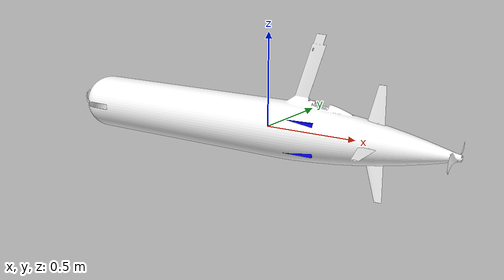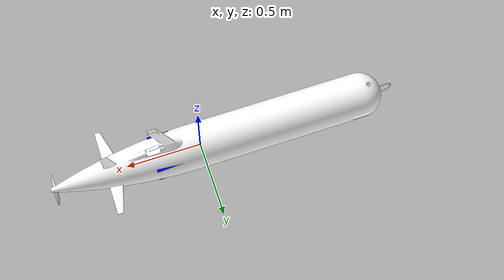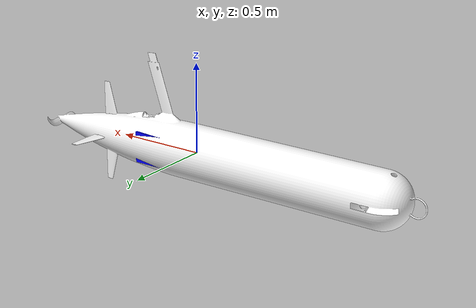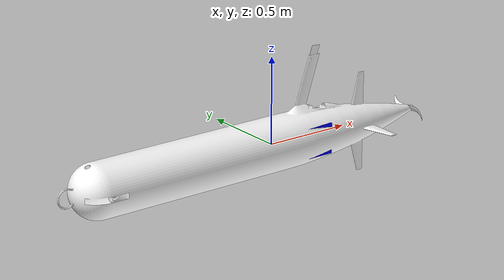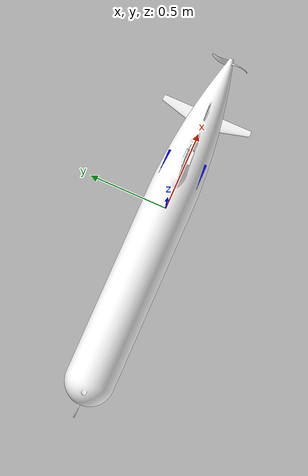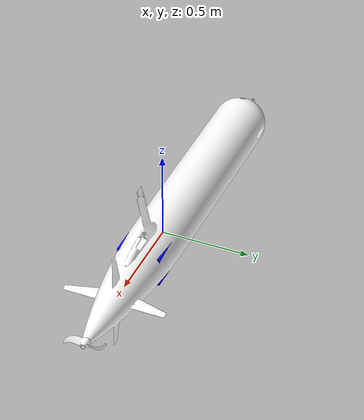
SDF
<?xml version="1.0"?>
<!--
  Development of this module has been funded by the Monterey Bay Aquarium
  Research Institute (MBARI) and the David and Lucile Packard Foundation
-->
<sdf version="1.9">
  <model name="tethys_fsk">
    <include merge="true">
      <uri>tethys_fsk</uri>

      <!-- Sensors -->
      <experimental:params>
        <sensor
          element_id="base_link"
          action="add"
          name="salinity_sensor"
          type="custom"
          ignition:type="salinity">
          <always_on>1</always_on>
          <update_rate>2</update_rate>
          <topic>/model/tethys_fsk/salinity</topic>
          <ignition:salinity>
            <noise type="gaussian">
              <mean>0.00001</mean>
              <stddev>0.00001</stddev>
            </noise>
          </ignition:salinity>
        </sensor>
        <sensor
          element_id="base_link"
          action="add"
          name="temperature_sensor"
          type="custom"
          ignition:type="temperature">
          <always_on>1</always_on>
          <update_rate>2</update_rate>
          <topic>/model/tethys_fsk/temperature</topic>
          <ignition:temperature>
            <noise type="gaussian">
              <mean>0.00001</mean>
              <stddev>0.00001</stddev>
            </noise>
          </ignition:temperature>
        </sensor>
        <sensor
          element_id="base_link"
          action="add"
          name="chlorophyll_sensor"
          type="custom"
          ignition:type="chlorophyll">
          <always_on>1</always_on>
          <update_rate>2</update_rate>
          <topic>/model/tethys_fsk/chlorophyll</topic>
          <ignition:chlorophyll>
            <noise type="gaussian">
              <mean>0.00001</mean>
              <stddev>0.00001</stddev>
            </noise>
          </ignition:chlorophyll>
        </sensor>
        <sensor
          element_id="base_link"
          action="add"
          name="current_sensor"
          type="custom"
          ignition:type="current">
          <always_on>1</always_on>
          <update_rate>2</update_rate>
          <topic>/model/tethys_fsk/current</topic>
          <ignition:current>
            <noise type="gaussian">
              <mean>0.00001</mean>
              <stddev>0.00001</stddev>
            </noise>
          </ignition:current>
        </sensor>
      </experimental:params>
      <!-- Joint controllers -->
      <plugin
        filename="ignition-gazebo-joint-position-controller-system"
        name="ignition::gazebo::systems::JointPositionController">
        <joint_name>horizontal_fins_joint</joint_name>
        <p_gain>0.1</p_gain>
      </plugin>
      <plugin
        filename="ignition-gazebo-joint-position-controller-system"
        name="ignition::gazebo::systems::JointPositionController">
        <joint_name>vertical_fins_joint</joint_name>
        <p_gain>0.1</p_gain>
      </plugin>
      <plugin
        filename="ignition-gazebo-thruster-system"
        name="ignition::gazebo::systems::Thruster">
        <namespace>tethys_fsk</namespace>
        <joint_name>propeller_joint</joint_name>
        <!-- Be sure to update TethysComm when updating these numbers -->
        <thrust_coefficient>0.004422</thrust_coefficient>
        <fluid_density>1000</fluid_density>
        <propeller_diameter>0.2</propeller_diameter>
        <velocity_control>true</velocity_control>
      </plugin>
      <plugin
        filename="ignition-gazebo-joint-position-controller-system"
        name="ignition::gazebo::systems::JointPositionController">
        <joint_name>battery_joint</joint_name>
        <use_velocity_commands>true</use_velocity_commands>
        <cmd_max>0.0007</cmd_max>
      </plugin>
      <!-- Lift and drag -->
      <!-- Vertical fin -->
      <plugin
        filename="ignition-gazebo-lift-drag-system"
        name="ignition::gazebo::systems::LiftDrag">
        <air_density>1000</air_density>
        <cla>4.13</cla>
        <cla_stall>-1.1</cla_stall>
        <cda>0.2</cda>
        <cda_stall>0.03</cda_stall>
        <alpha_stall>0.17</alpha_stall>
        <a0>0</a0>
        <area>0.0244</area>
        <!-- Link's Y is perpendicular to the control surface -->
        <upward>0 1 0</upward>
        <!-- Link's X is pointing towards the front -->
        <forward>1 0 0</forward>
        <link_name>vertical_fins</link_name>
        <cp>0 0 0</cp>
      </plugin>
      <!-- Horizontal fin -->
      <plugin
        filename="ignition-gazebo-lift-drag-system"
        name="ignition::gazebo::systems::LiftDrag">
        <air_density>1000</air_density>
        <cla>4.13</cla>
        <cla_stall>-1.1</cla_stall>
        <cda>0.2</cda>
        <cda_stall>0.03</cda_stall>
        <alpha_stall>0.17</alpha_stall>
        <a0>0</a0>
        <area>0.0244</area>
        <!-- Link's Z is perpendicular to the control surface -->
        <upward>0 0 -1</upward>
        <!-- Link's X is pointing towards the front -->
        <forward>1 0 0</forward>
        <link_name>horizontal_fins</link_name>
        <cp>0 0 0</cp>
      </plugin>
      <!-- Interface with LRAUV Main Vehicle Application for each vehicle -->
      <plugin
        filename="TethysCommPlugin"
        name="tethys::TethysCommPlugin">
        <namespace>tethys_fsk</namespace>
        <command_topic>tethys_fsk/command_topic</command_topic>
        <state_topic>tethys_fsk/state_topic</state_topic>
        <debug_printout>0</debug_printout>
        <ocean_density>1000</ocean_density>
      </plugin>
      <plugin
        filename="HydrodynamicsPlugin"
        name="tethys::HydrodynamicsPlugin">
        <link_name>base_link</link_name>
        <enable_coriolis>false</enable_coriolis>
        <xDotU>4.876161</xDotU>
        <yDotV>-126.324739</yDotV>
        <zDotW>126.324739</zDotW>
        <kDotP>0</kDotP>
        <mDotQ>-33.46</mDotQ>
        <nDotR>33.46</nDotR>
        <xUU>6.2282</xUU>
        <xU>0</xU>
        <yVV>-601.27</yVV>
        <yV>0</yV>
        <zWW>601.27</zWW>
        <zW>0</zW>
        <kPP>0.1916</kPP>
        <kP>0</kP>
        <mQQ>-632.698957</mQQ>
        <mQ>0</mQ>
        <nRR>632.698957</nRR>
        <nR>0</nR>
      </plugin>
      <plugin
        filename="ignition-gazebo-buoyancy-engine-system"
        name="ignition::gazebo::v6::systems::BuoyancyEnginePlugin">
        <link_name>buoyancy_engine</link_name>
        <namespace>tethys_fsk</namespace>
        <fluid_density>1000</fluid_density>
        <!-- 80 cc == 0.00008 m^3 -->
        <min_volume>0.000080</min_volume>
        <!-- 500 cc == 0.0005 m^3 -->
        <neutral_volume>0.0005</neutral_volume>
        <default_volume>0.0005</default_volume>
        <!-- 955 cc == 0.000955 m^3 -->
        <max_volume>0.000955</max_volume>
        <max_inflation_rate>0.000003</max_inflation_rate>
      </plugin>
      <plugin
        filename="ignition-gazebo-detachable-joint-system"
        name="ignition::gazebo::systems::DetachableJoint">
        <parent_link>base_link</parent_link>
        <child_model>__model__</child_model>
        <child_link>drop_weight</child_link>
        <topic>/model/tethys_fsk/drop_weight</topic>
      </plugin>

      <plugin
        filename="AcousticCommsPlugin"
        name="tethys::AcousticCommsPlugin">
        <address>1</address>
        <model_plugin_file>simpleacousticmodel</model_plugin_file>
        <model_name>tethys::SimpleAcousticModel</model_name>
        <link_name>base_link</link_name>
        <max_range>2500</max_range>
        <speed_of_sound>1500</speed_of_sound>
      </plugin>

      <plugin
        filename="RangeBearingPlugin"
        name="tethys::RangeBearingPlugin">
        <address>1</address>
        <processing_delay>0.3</processing_delay>
        <speed_of_sound>1500</speed_of_sound>
        <link_name>base_link</link_name>
        <namespace>tethys_fsk</namespace>
      </plugin>

    </include>
  </model>
</sdf>

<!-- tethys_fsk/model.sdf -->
<!--
  Development of this module has been funded by the Monterey Bay Aquarium
  Research Institute (MBARI) and the David and Lucile Packard Foundation
-->
<sdf version="1.6">
  <!--
    Oriented according to FSK:
    * X: forward
    * Y: starboard (right)
    * Z: keel (down)
  -->
  <model name="tethys_fsk">
    <!-- Body -->
    <link name="base_link">
      <inertial>
        <!-- to offset battery CoM before getting real parameters for vehicle without battery -->
        <!-- 146.5671 subtracted by battery mass -->
        <mass>114.8364</mass>
        <!-- TODO: Get inertial matrix of base link WITHOUT battery -->
        <inertia>

          <!-- Guesstimated (decreased by 1/5) to account for battery -->
          <ixx>2.4</ixx>
          <ixy>0</ixy>
          <ixz>0.0004</ixz>
          <iyy>33.5841864</iyy>
          <iyz>0</iyz>
          <izz>33.5841864</izz>

        </inertia>
      </inertial>

      <collision name="main_body_buoyancy">
        <pose>0 0 -0.007 0 0 0</pose>
        <geometry>
          <box>
            <size>2 0.3 0.245945166667</size>
          </box>
        </geometry>
      </collision>

      <visual name="visual">
        <pose degrees="true">0 0 0  180 0 180</pose>
        <geometry>
          <mesh>
            <uri>meshes/tethys.dae</uri>
            <submesh>
              <name>Body</name>
              <center>false</center>
            </submesh>
          </mesh>
        </geometry>
        <material>
          <diffuse>1.0 1.0 1.0 1.0</diffuse>
          <specular>1.0 1.0 1.0 1.0</specular>
          <pbr>
            <metal>
              <albedo_map>materials/textures/Tethys_Albedo.png</albedo_map>
              <normal_map>materials/textures/Tethys_Normal.png</normal_map>
              <metalness_map>materials/textures/Tethys_Metalness.png</metalness_map>
              <roughness_map>materials/textures/Tethys_Roughness.png</roughness_map>
            </metal>
          </pbr>
          <script>
            <uri>materials/scripts/</uri>
            <uri>materials/textures/</uri>
            <name>tethys/Tethys_Diffuse</name>
          </script>
        </material>
      </visual>
    </link>

    <!-- Horizontal fins -->
    <link name="horizontal_fins">
      <pose>-1.05 0 0 0 0 0</pose>
      <inertial>
        <pose>0 0 0 -1.57 0 -0.5</pose>
        <mass>0.2</mass>
        <inertia>
          <ixx>0.0007924568755</ixx>
          <ixy>0.0000000002674</ixy>
          <ixz>0.0003978158176</ixz>
          <iyy>0.0010546736475</iyy>
          <iyz>0.0000000006729</iyz>
          <izz>0.0002633558262</izz>
        </inertia>
      </inertial>

      <collision name="collision">
        <geometry>
          <box>
            <size>0.1 0.1 0.02</size>
          </box>
        </geometry>
      </collision>

      <visual name= "visual">
        <pose degrees="true">1.05 0 0  180 0 180</pose>
        <geometry>
          <mesh>
            <uri>meshes/tethys.dae</uri>
            <submesh>
              <name>Fins_Horizontal</name>
              <center>false</center>
            </submesh>
          </mesh>
        </geometry>
        <material>
          <diffuse>1.0 1.0 1.0</diffuse>
          <specular>1.0 1.0 1.0</specular>
          <pbr>
            <metal>
              <albedo_map>materials/textures/Tethys_Albedo.png</albedo_map>
              <normal_map>materials/textures/Tethys_Normal.png</normal_map>
              <metalness_map>materials/textures/Tethys_Metalness.png</metalness_map>
              <roughness_map>materials/textures/Tethys_Roughness.png</roughness_map>
            </metal>
          </pbr>
          <script>
            <uri>materials/scripts/</uri>
            <uri>materials/textures/</uri>
            <name>tethys/Tethys_Diffuse</name>
          </script>
        </material>
      </visual>
    </link>

    <!-- Vertical fins -->
    <link name="vertical_fins">
      <pose>-1.05 0 0 0 0 0</pose>
      <inertial>
        <mass>0.2</mass>
        <inertia>
          <ixx>0.0007924568755</ixx>
          <ixy>0.0000000002674</ixy>
          <ixz>0.0003978158176</ixz>
          <iyy>0.0010546736475</iyy>
          <iyz>0.0000000006729</iyz>
          <izz>0.0002633558262</izz>
        </inertia>
      </inertial>

      <collision name="collision">
         <geometry>
          <box>
            <size>0.1 0.1 0.02</size>
          </box>
        </geometry>
      </collision>

      <visual name= "visual">
        <pose degrees="true">1.05 0 0  180 0 180</pose>
        <geometry>
          <mesh>
            <uri>meshes/tethys.dae</uri>
            <submesh>
              <name>Fins_vertical</name>
              <center>false</center>
            </submesh>
          </mesh>
        </geometry>
        <material>
          <diffuse>1.0 1.0 1.0</diffuse>
          <specular>1.0 1.0 1.0</specular>
          <pbr>
            <metal>
              <albedo_map>materials/textures/Tethys_Albedo.png</albedo_map>
              <normal_map>materials/textures/Tethys_Normal.png</normal_map>
              <metalness_map>materials/textures/Tethys_Metalness.png</metalness_map>
              <roughness_map>materials/textures/Tethys_Roughness.png</roughness_map>
            </metal>
          </pbr>
          <script>
            <uri>materials/scripts/</uri>
            <uri>materials/textures/</uri>
            <name>tethys/Tethys_Diffuse</name>
          </script>
        </material>
      </visual>
    </link>

    <!-- Propeller -->
    <link name="propeller">
      <pose>-1.43162 0 0 0 0 0</pose>
      <inertial>
        <pose>0 0 0 -1.570796 0 0</pose>
        <mass>0.09</mass>
        <inertia>
          <ixx>0.000143971303</ixx>
          <ixy>-0.000000000008</ixy>
          <ixz>-0.000000000224</ixz>
          <iyy>0.000140915448</iyy>
          <iyz>0.000025236433</iyz>
          <izz>0.000033571862</izz>
        </inertia>
      </inertial>

      <collision name="collision">
        <geometry>
          <box>
            <size>0.03 0.1 0.03</size>
          </box>
        </geometry>
      </collision>

      <visual name= "visual">
        <pose degrees="true">1.43162 0 0  180 0 180</pose>
        <geometry>
          <mesh>
            <uri>meshes/tethys.dae</uri>
            <submesh>
              <name>Prop</name>
              <center>false</center>
            </submesh>
          </mesh>
        </geometry>
        <material>
          <diffuse>1.0 1.0 1.0</diffuse>
          <specular>1.0 1.0 1.0</specular>
          <pbr>
            <metal>
              <albedo_map>materials/textures/Tethys_Albedo.png</albedo_map>
              <normal_map>materials/textures/Tethys_Normal.png</normal_map>
              <metalness_map>materials/textures/Tethys_Metalness.png</metalness_map>
              <roughness_map>materials/textures/Tethys_Roughness.png</roughness_map>
            </metal>
          </pbr>
          <script>
            <uri>materials/scripts/</uri>
            <uri>materials/textures/</uri>
            <name>tethys/Tethys_Diffuse</name>
          </script>
        </material>
      </visual>
    </link>

    <!-- Battery -->
    <!-- No separate collision for battery, because it is inside the vehicle.
         Additional collision requires buoyancy volume recalculation. -->
    <link name="battery">
      <!-- TODO: On hold till mesh center adjusted to aft dome, then it will be 0.563, 0, 0.024. -->
      <pose>0 0 0 0 0 0</pose>
      <inertial>
        <!-- Non-zero y creates roll. Not fun to tune without actual base link inertia minus battery-->
        <mass>31.7307</mass>
        <inertia>
          <ixx>0.2327</ixx>
          <ixy>0</ixy>
          <ixz>-0.0004</ixz>
          <iyy>1.0930</iyy>
          <iyz>0</iyz>
          <izz>1.0344</izz>
        </inertia>
      </inertial>

      <visual name= "visual">
        <geometry>
          <box>
            <!-- z is guesstimated from schematics. Visual doesn't matter. -->
            <size>0.6489446 0.24638 0.17415</size>
          </box>
        </geometry>
        <material>
          <diffuse>0.0 0.0 1.0 1.0</diffuse>
          <specular>0.0 0.0 1.0 1.0</specular>
        </material>
      </visual>
    </link>

    <link name="buoyancy_engine">
      <!-- TODO: Determine location of buoyancy engine -->
      <pose>-0.4 0 0 0 0 0</pose>

      <inertial>
        <pose>0 0 0 0 0 0</pose>
        <mass>0.3</mass>
        <inertia>
          <ixx>0.000143971303</ixx>
          <ixy>-0.000000000008</ixy>
          <ixz>-0.000000000224</ixz>
          <iyy>0.000140915448</iyy>
          <iyz>0.000025236433</iyz>
          <izz>0.000033571862</izz>
        </inertia>
      </inertial>
      <collision name="collision">
        <geometry>
          <box>
            <size>0.03 0.1 0.1</size>
          </box>
        </geometry>
      </collision>
    </link>

    <!-- Joints -->
    <joint name="buoyancy_engine_joint" type="fixed">
      <pose>0 0 0 0 0 0</pose>
      <parent>base_link</parent>
      <child>buoyancy_engine</child>
      <namespace>tethys</namespace>
    </joint>
    <joint name="horizontal_fins_joint" type="revolute">
      <pose>0 0 0 0 0 0</pose>
      <parent>base_link</parent>
      <child>horizontal_fins</child>
      <axis>
        <xyz>0 1 0</xyz>
        <limit>
          <lower>-0.261799</lower>
          <upper>0.261799</upper>
          <effort>-1</effort>
          <velocity>-1</velocity>
        </limit>
      </axis>
    </joint>

    <joint name="vertical_fins_joint" type="revolute">
      <parent>base_link</parent>
      <child>vertical_fins</child>
      <axis>
        <xyz>0 0 1</xyz>
        <limit>
          <lower>-0.261799</lower>
          <upper>0.261799</upper>
          <effort>-1</effort>
          <velocity>-1</velocity>
        </limit>
      </axis>
    </joint>

    <joint name="propeller_joint" type="revolute">
      <parent>base_link</parent>
      <child>propeller</child>
      <axis>
        <xyz>1 0 0</xyz>
        <limit>
          <lower>-1e+12</lower>
          <upper>1e+12</upper>
          <effort>1e6</effort>
          <velocity>-1</velocity>
        </limit>
      </axis>
    </joint>

    <!-- positive joint values move mass forward -->
    <joint name="battery_joint" type="prismatic">
      <parent>base_link</parent>
      <child>battery</child>
      <axis>
        <xyz>1 0 0</xyz>
        <limit>
          <lower>-0.03</lower>
          <upper>0.03</upper>
          <effort>1e6</effort>
          <velocity>0.0007</velocity>
        </limit>
      </axis>
    </joint>

    <!-- Drop weight -->
    <link name="drop_weight">
      <pose>0 0 0 0 0 0</pose>
      <inertial>
        <pose>0 0 0 0 0 0</pose>
        <mass>1</mass>
        <inertia>
          <ixx>0.000143971303</ixx>
          <ixy>-0.000000000008</ixy>
          <ixz>-0.000000000224</ixz>
          <iyy>0.000140915448</iyy>
          <iyz>0.000025236433</iyz>
          <izz>0.000033571862</izz>
        </inertia>
      </inertial>
    </link>

  </model>
</sdf>
